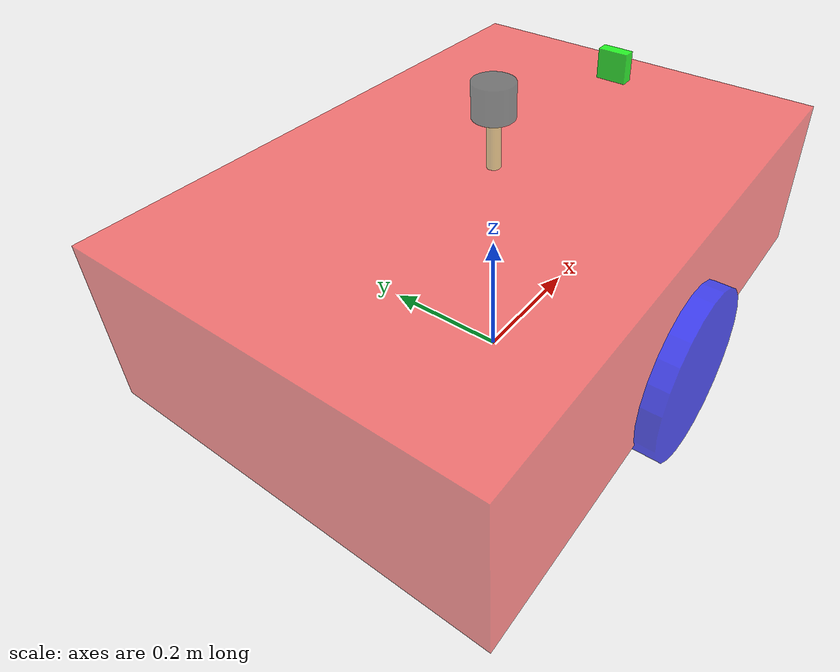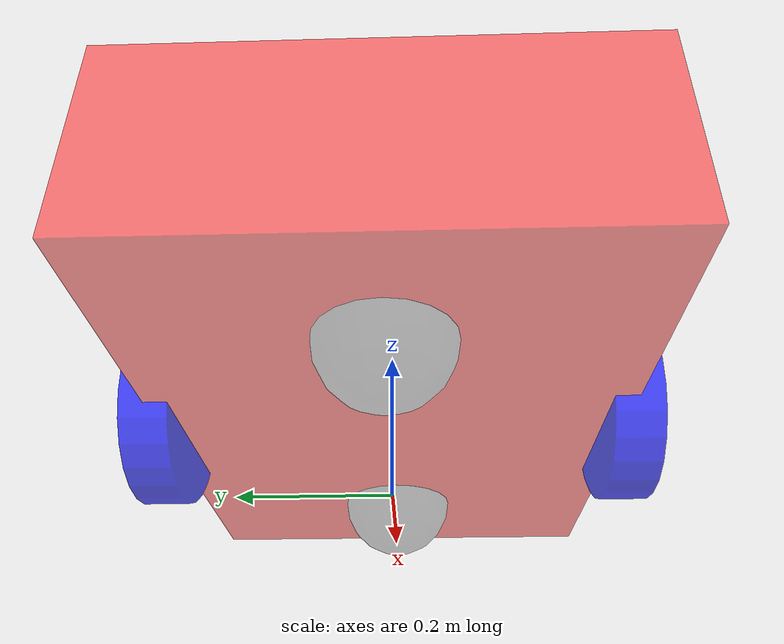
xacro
<robot name="mycar_text" xmlns:xacro="http://wiki.ros.org/xacro">
    <xacro:include filename="demo05_car_base.urdf.xacro" />
    <xacro:include filename="demo06_car_camera.urdf.xacro" />
    <xacro:include filename="demo07_car_laser.urdf.xacro" />
    <xacro:include filename="demo08_car_imu.urdf.xacro" />
</robot>

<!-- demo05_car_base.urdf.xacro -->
<robot name="mycar_text" xmlns:xacro="http://wiki.ros.org/xacro">
    <xacro:property name="footprint_radius" value="0.001"/>
    <link name="base_footprint">
        <visual>
            <geometry>
                <sphere radius="${footprint_radius}" />
            </geometry>
        </visual>
    </link>
    <!-- 底盘 -->
    <xacro:property name="base_length" value="0.86"/>
    <xacro:property name="base_width" value="0.60"/>
    <xacro:property name="base_height" value="0.25"/>
    <xacro:property name="lidi" value="0.08"/>
    <xacro:property name="base_joint_z" value="${base_height}/2+${lidi}"/>
    <link name="base_link">
        <visual>
            <geometry>
                <box size="0.86 0.60 0.25" />
            </geometry>
                <origin xyz="0 0 0" rpy="0 0 0" />
                <material name="car_color">
                    <color rgba="1 0 0 0.5"/>
                </material>
        </visual>
    </link>
    <!-- joint -->
    <joint name="link2footprint" type="fixed">
        <parent link="base_footprint"/>
        <child link="base_link"/>
        <origin xyz="0 0 0.205" rpy="0 0 0"/>
    </joint>
    <!-- 属性 -->
    <xacro:property name="big_wheel_radius" value="0.125" />
    <xacro:property name="small_wheel_radius" value="0.09" />
    <xacro:property name="wheel_length" value="0.06" />
    <xacro:property name="wanxiang_radius" value="0.08" />
    <xacro:property name="PI" value="3.1415927" />
    <xacro:property name="wheel_joint_z" value="${base_height/2-0.3}" />
    <xacro:macro name="wheel_func_big" params="wheel_name flag1 flag2 ">
        <!-- 驱动轮left_front_big_wheel -->
        <link name="${wheel_name}_big_wheel">
            <visual>
                <geometry>
                    <cylinder radius="${big_wheel_radius}" length="${wheel_length}" />
                </geometry>
                    <origin xyz="0 0 0" rpy="${PI/2} 0 0" />
                    <material name="${wheel_name}_big_wheel_color">
                        <color rgba="0 0 1 0.7"/>
                    </material>
            </visual>
        </link>
    <!-- joint -->
        <joint name="${wheel_name}_wheel_joint" type="continuous">
            <parent link="base_link"/>
            <child link="${wheel_name}_big_wheel"/>
            <origin xyz="0 ${0.3*flag2} -0.08" rpy="0 0 0"/>
            <axis xyz="0 1 0"/>
        </joint>
    </xacro:macro>
    <xacro:wheel_func_big wheel_name="base_l" flag1="-1" flag2="1"/>
    <xacro:wheel_func_big wheel_name="base_r" flag1="-1" flag2="-1"/>

    <xacro:macro name="wheel_func_small" params="wheel_name flag1 flag2 ">
    <!-- 驱动轮left_front_small_wheel -->
    <link name="${wheel_name}_small_wheel">
        <visual>
            <geometry>
                <cylinder radius="${small_wheel_radius}" length="${wheel_length}" />
            </geometry>
                <origin xyz="0 0 0" rpy="${PI/2} 0 0" />
                <material name="${wheel_name}_small_wheel_color">
                    <color rgba="0 0 1 0.7"/>
                </material>
        </visual>
    </link>
   <!-- joint -->
    <joint name="${wheel_name}_small_wheel2link" type="continuous">
        <parent link="base_link"/>
        <child link="${wheel_name}_small_wheel"/>
        <origin xyz="${0.10*flag1} ${0.18*flag2} -0.125" rpy="0 0 0"/>
        <axis xyz="0 0 1"/>
    </joint>
</xacro:macro>
<xacro:property name="wanxiang_small_wheel_radius" value="0.08"/>
        <xacro:property name="wanxiang_small_joint_z" value="${-1*(base_height/2+lidi-wanxiang_small_wheel_radius)}"/>
        <xacro:macro name="wanxiang_small_wheel_func" params=" wanxiang_small_wheel_name flag" >
         <link name="${wanxiang_small_wheel_name}_wheel">
            <visual>
                <geometry>
                    <sphere radius="${wanxiang_small_wheel_radius}" />
                </geometry>
                <origin xyz="0 0 0" rpy="0 0 0" />
                <material name="wanxiang_wheel_color">
                        <color rgba="0 0 0 0.3" />
                </material>
            </visual>
        </link>
        <joint name="${wanxiang_small_wheel_name}2link" type="continuous">
            <parent link="base_link" />
            <child link="${wanxiang_small_wheel_name}_wheel" />
            <origin xyz="${0.25*flag} 0 ${wanxiang_small_joint_z}" rpy="0 0 0" />
            <axis xyz="0 1 0"/>
        </joint>
         </xacro:macro>
         <xacro:wanxiang_small_wheel_func wanxiang_small_wheel_name="front" flag="1"/>
         <xacro:wanxiang_small_wheel_func wanxiang_small_wheel_name="back" flag="-1"/>
</robot>

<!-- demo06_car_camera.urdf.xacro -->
<robot name="mycar_text" xmlns:xacro="http://wiki.ros.org/xacro">
<xacro:property name="camera_length" value="0.02"/>
<xacro:property name="camera_width" value="0.05"/>
<xacro:property name="camera_height" value="0.05"/>
<xacro:property name="joint_camera_x" value="0.34"/>
<xacro:property name="joint_camera_y" value="0"/>
<xacro:property name="joint_camera_z" value="0.15"/>
<link name="camera">
    <visual>
        <geometry>
            <box size="${camera_length} ${camera_width} ${camera_height}"/>
        </geometry>
        <origin xyz="0 0 0" rpy="0 0 0"/>
        <material name="black">
            <color rgba="0 1 0 0.8"/>
        </material>
    </visual>
</link>
<joint name="camera2base" type="fixed">
    <parent link="base_link"/>
    <child link="camera" />
    <origin xyz="${joint_camera_x} ${joint_camera_y} ${joint_camera_z}" rpy="0 0 0"/>
</joint>
</robot>

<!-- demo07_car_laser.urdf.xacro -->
<robot name="mycar_text" xmlns:xacro="http://wiki.ros.org/xacro">
    <xacro:property name="support_radius" value="0.01"/>
    <xacro:property name="support_length" value="0.075"/>
    <xacro:property name="laser_radius" value="0.03"/>
    <xacro:property name="laser_length" value="0.05"/>

    <xacro:property name="joint_support_x" value="0"/>
    <xacro:property name="joint_support_y" value="0"/>
    <xacro:property name="joint_support_z" value="${base_height/2+support_length/2}"/>

    <xacro:property name="joint_laser_x" value="0"/>
    <xacro:property name="joint_laser_y" value="0"/>
    <xacro:property name="joint_laser_z" value="${support_length/2+laser_length/2}"/>
    <link name="support">
        <visual>
            <geometry>
                <cylinder radius="${support_radius}" length="${support_length}" />
            </geometry>
            <material name="yellow">
                <color rgba="0.8 0.5 0 0.5"/>
            </material>
        </visual>
    </link>

    <joint name="support2base" type="fixed">
        <parent link="base_link"/>
        <child link="support" />
        <origin xyz="${joint_support_x} ${joint_support_y} ${joint_support_z}" rpy="0 0 0" />
    </joint>
    <!-- 雷达 -->
    <link name="laser">
        <visual>
            <geometry>
                <cylinder radius="${laser_radius}" length="${laser_length}" />
            </geometry>
            <material name="black">
                <color rgba="0 0 0 0.5"/>
            </material>
        </visual>
    </link>

    <joint name="laser2support" type="fixed">
        <parent link="support"/>
        <child link="laser" />
        <origin xyz="${joint_laser_x} ${joint_laser_y} ${joint_laser_z}" rpy="0 0 0" />
    </joint>
</robot>

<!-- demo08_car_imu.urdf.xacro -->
<robot name="mycar_text" xmlns:xacro="http://wiki.ros.org/xacro">
<xacro:property name="imu_length" value="0.01"/>
<xacro:property name="imu_width" value="0.01"/>
<xacro:property name="imu_height" value="0.01"/>
<xacro:property name="joint_imu_x" value="0.34"/>
<xacro:property name="joint_imu_y" value="0"/>
<xacro:property name="joint_imu_z" value="0.15"/>
<link name="imu_link">
    <visual>
        <geometry>
            <box size="${imu_length} ${imu_width} ${imu_height}"/>
        </geometry>
        <origin xyz="0 0 0" rpy="0 0 0"/>
        <material name="black">
            <color rgba="0 1 0 0.8"/>
        </material>
    </visual>
</link>
<joint name="imu2base" type="fixed">
    <parent link="base_link"/>
    <child link="imu_link" />
    <origin xyz="${joint_imu_x} ${joint_imu_y} ${joint_imu_z}" rpy="0 0 0"/>
</joint>
</robot>
